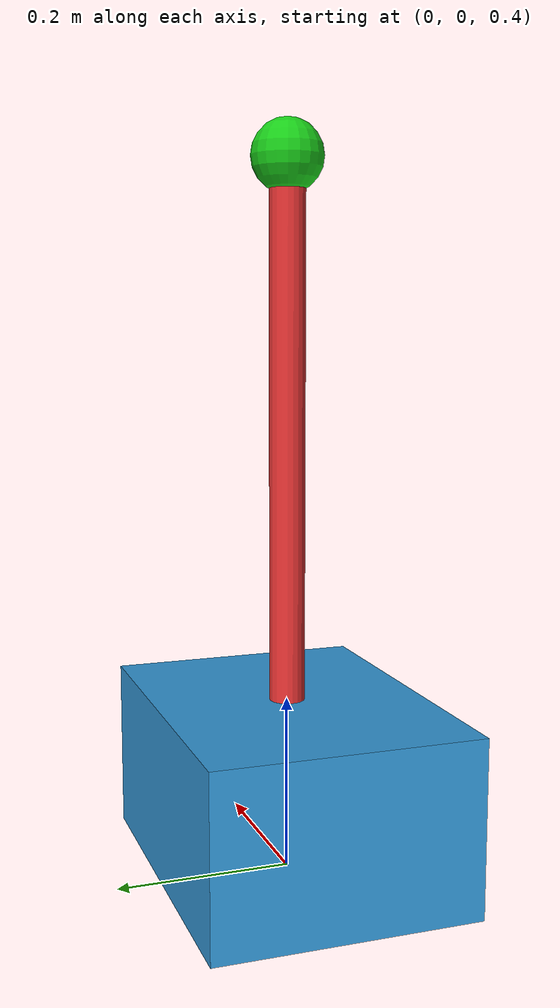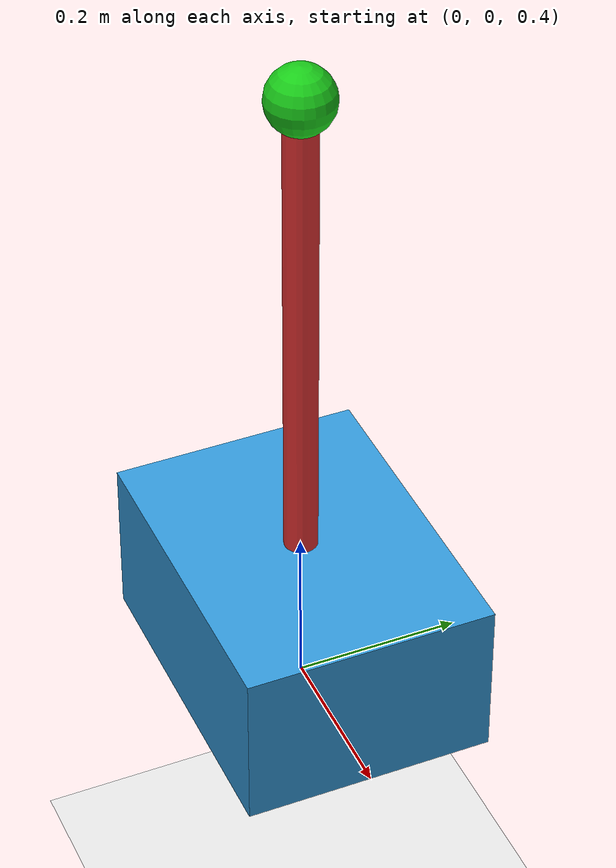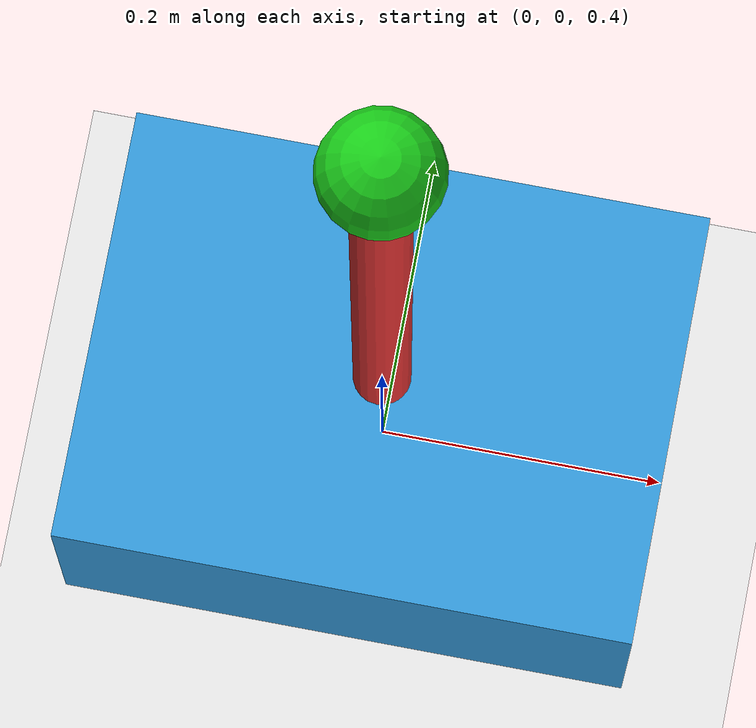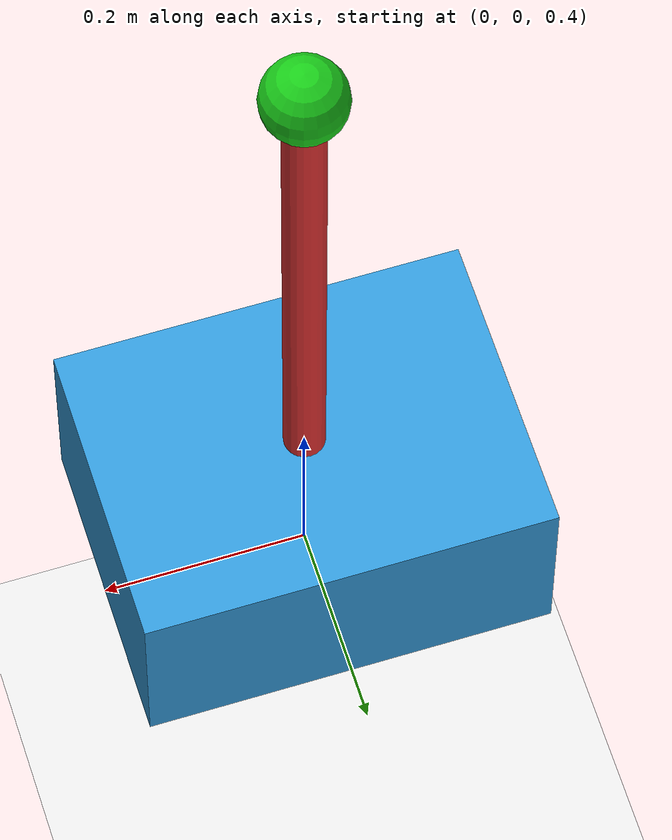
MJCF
<mujoco model="inverted_pendulum">
  <option timestep="0.002" gravity="0 0 -9.81" integrator="RK4"/>

  <default>
    <joint damping="0.05"/>
    <geom contype="0" conaffinity="0"/>
  </default>

  <worldbody>
    <!-- Ground plane (visual only) -->
    <geom name="floor" type="plane" size="5 5 0.1" rgba="0.9 0.9 0.9 1" contype="1" conaffinity="1"/>

    <!-- Cart (slides along x-axis) -->
    <body name="cart" pos="0 0 0.5">
      <joint name="slider" type="slide" axis="1 0 0" limited="true" range="-2.5 2.5" damping="0.1"/>
      <geom name="cart_geom" type="box" size="0.2 0.15 0.1" rgba="0.2 0.6 0.85 1" mass="1.0"/>

      <!-- Pendulum (hinged on the cart) -->
      <body name="pole" pos="0 0 0.1">
        <joint name="hinge" type="hinge" axis="0 1 0" damping="0.01"/>
        <geom name="pole_geom" type="capsule" fromto="0 0 0 0 0 0.6" size="0.02" rgba="0.9 0.2 0.2 1" mass="0.1"/>
        <!-- Tip mass for better visibility -->
        <body name="tip" pos="0 0 0.6">
          <geom name="tip_geom" type="sphere" size="0.04" rgba="0.1 0.8 0.1 1" mass="0.05"/>
        </body>
      </body>
    </body>
  </worldbody>

  <actuator>
    <!-- Force actuator on the cart slider joint -->
    <motor name="cart_force" joint="slider" gear="1" ctrlrange="-20 20" ctrllimited="true"/>
  </actuator>
</mujoco>
